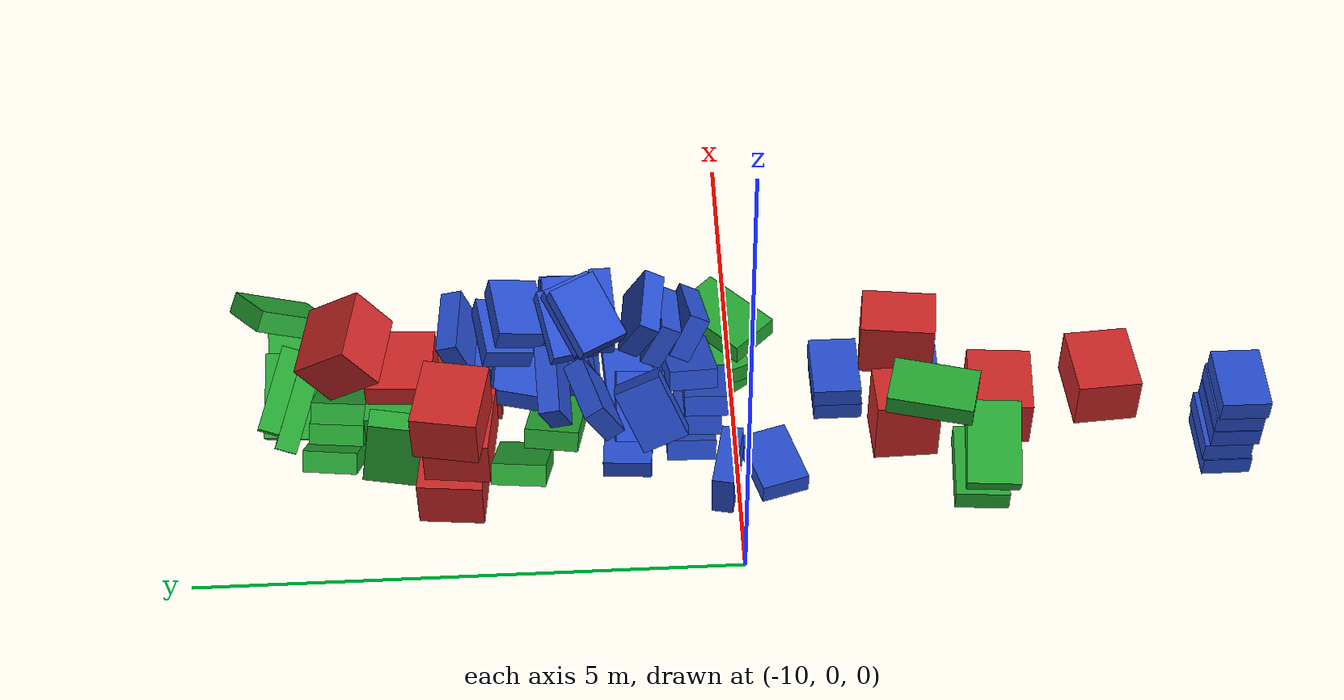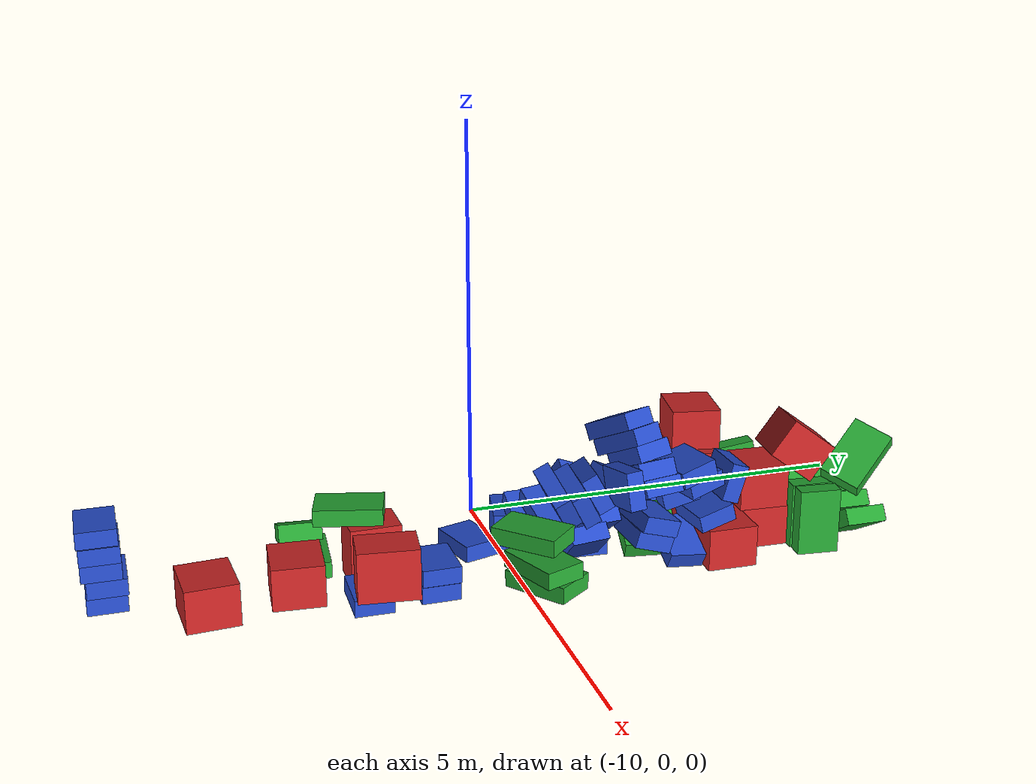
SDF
<sdf version="1.6">
 <world name="default">
  <model name="baggage_D">
   <static>0</static>
   <link name="link">
    <collision name="collision"><geometry><box><size>0.8 0.5 0.2</size></box></geometry></collision>
    <visual name="visual">
     <geometry><box><size>0.8 0.5 0.2</size></box></geometry>
     <material>
      <script><uri>file://media/materials/scripts/gazebo.material</uri><name>Gazebo/Green</name></script>
     </material>
    </visual>
    <inertial>
     <inertia><ixx>1</ixx><ixy>0</ixy><ixz>0</ixz><iyy>1</iyy><iyz>0</iyz><izz>1</izz></inertia>
     <mass>1</mass>
    </inertial>
   </link>
   <pose>-9.08099 -2.35326 0.443171 5.7e-05 -0.385028 -0.081844</pose>
  </model>
  <model name="baggage_B_clone_3">
   <static>0</static>
   <link name="link">
    <collision name="collision"><geometry><box><size>0.65 0.45 0.2</size></box></geometry></collision>
    <visual name="visual">
     <geometry><box><size>0.65 0.45 0.2</size></box></geometry>
     <material>
      <script><uri>file://media/materials/scripts/gazebo.material</uri><name>Gazebo/Blue</name></script>
     </material>
    </visual>
    <inertial>
     <inertia><ixx>1</ixx><ixy>0</ixy><ixz>0</ixz><iyy>1</iyy><iyz>0</iyz><izz>1</izz></inertia>
     <mass>1</mass>
    </inertial>
   </link>
   <pose>-8.83892 -4.5935 0.499508 1.9e-05 2e-05 -0.011908</pose>
  </model>
  <model name="baggage_B_clone_4">
   <static>0</static>
   <link name="link">
    <collision name="collision"><geometry><box><size>0.65 0.45 0.2</size></box></geometry></collision>
    <visual name="visual">
     <geometry><box><size>0.65 0.45 0.2</size></box></geometry>
     <material>
      <script><uri>file://media/materials/scripts/gazebo.material</uri><name>Gazebo/Blue</name></script>
     </material>
    </visual>
    <inertial>
     <inertia><ixx>1</ixx><ixy>0</ixy><ixz>0</ixz><iyy>1</iyy><iyz>0</iyz><izz>1</izz></inertia>
     <mass>1</mass>
    </inertial>
   </link>
   <pose>-8.84925 -4.56067 0.099617 1.8e-05 2.2e-05 0.000958</pose>
  </model>
  <model name="baggage_B_clone_5">
   <static>0</static>
   <link name="link">
    <collision name="collision"><geometry><box><size>0.65 0.45 0.2</size></box></geometry></collision>
    <visual name="visual">
     <geometry><box><size>0.65 0.45 0.2</size></box></geometry>
     <material>
      <script><uri>file://media/materials/scripts/gazebo.material</uri><name>Gazebo/Blue</name></script>
     </material>
    </visual>
    <inertial>
     <inertia><ixx>1</ixx><ixy>0</ixy><ixz>0</ixz><iyy>1</iyy><iyz>0</iyz><izz>1</izz></inertia>
     <mass>1</mass>
    </inertial>
   </link>
   <pose>-7.92374 -1.76438 0.1 0 0 -0.017897</pose>
  </model>
  <model name="baggage_B_clone_6">
   <static>0</static>
   <link name="link">
    <collision name="collision"><geometry><box><size>0.65 0.45 0.2</size></box></geometry></collision>
    <visual name="visual">
     <geometry><box><size>0.65 0.45 0.2</size></box></geometry>
     <material>
      <script><uri>file://media/materials/scripts/gazebo.material</uri><name>Gazebo/Blue</name></script>
     </material>
    </visual>
    <inertial>
     <inertia><ixx>1</ixx><ixy>0</ixy><ixz>0</ixz><iyy>1</iyy><iyz>0</iyz><izz>1</izz></inertia>
     <mass>1</mass>
    </inertial>
   </link>
   <pose>-8.00112 -0.995911 0.099982 2e-06 -3e-06 0.000404</pose>
  </model>
  <model name="baggage_B_clone_7">
   <static>0</static>
   <link name="link">
    <collision name="collision"><geometry><box><size>0.65 0.45 0.2</size></box></geometry></collision>
    <visual name="visual">
     <geometry><box><size>0.65 0.45 0.2</size></box></geometry>
     <material>
      <script><uri>file://media/materials/scripts/gazebo.material</uri><name>Gazebo/Blue</name></script>
     </material>
    </visual>
    <inertial>
     <inertia><ixx>1</ixx><ixy>0</ixy><ixz>0</ixz><iyy>1</iyy><iyz>0</iyz><izz>1</izz></inertia>
     <mass>1</mass>
    </inertial>
   </link>
   <pose>-8.00628 -0.980284 0.299987 1.8e-05 -6e-06 0.000107</pose>
  </model>
  <model name="baggage_B_clone_8">
   <static>0</static>
   <link name="link">
    <collision name="collision"><geometry><box><size>0.65 0.45 0.2</size></box></geometry></collision>
    <visual name="visual">
     <geometry><box><size>0.65 0.45 0.2</size></box></geometry>
     <material>
      <script><uri>file://media/materials/scripts/gazebo.material</uri><name>Gazebo/Blue</name></script>
     </material>
    </visual>
    <inertial>
     <inertia><ixx>1</ixx><ixy>0</ixy><ixz>0</ixz><iyy>1</iyy><iyz>0</iyz><izz>1</izz></inertia>
     <mass>1</mass>
    </inertial>
   </link>
   <pose>-8.85185 -4.61375 0.899508 1.6e-05 3.1e-05 -0.006663</pose>
  </model>
  <model name="baggage_B_clone_10">
   <static>0</static>
   <link name="link">
    <collision name="collision"><geometry><box><size>0.65 0.45 0.2</size></box></geometry></collision>
    <visual name="visual">
     <geometry><box><size>0.65 0.45 0.2</size></box></geometry>
     <material>
      <script><uri>file://media/materials/scripts/gazebo.material</uri><name>Gazebo/Blue</name></script>
     </material>
    </visual>
    <inertial>
     <inertia><ixx>1</ixx><ixy>0</ixy><ixz>0</ixz><iyy>1</iyy><iyz>0</iyz><izz>1</izz></inertia>
     <mass>1</mass>
    </inertial>
   </link>
   <pose>-8.83854 -4.54571 0.299526 2.1e-05 1.8e-05 -0.004779</pose>
  </model>
  <model name="baggage_B_clone_11">
   <static>0</static>
   <link name="link">
    <collision name="collision"><geometry><box><size>0.65 0.45 0.2</size></box></geometry></collision>
    <visual name="visual">
     <geometry><box><size>0.65 0.45 0.2</size></box></geometry>
     <material>
      <script><uri>file://media/materials/scripts/gazebo.material</uri><name>Gazebo/Blue</name></script>
     </material>
    </visual>
    <inertial>
     <inertia><ixx>1</ixx><ixy>0</ixy><ixz>0</ixz><iyy>1</iyy><iyz>0</iyz><izz>1</izz></inertia>
     <mass>1</mass>
    </inertial>
   </link>
   <pose>-8.83119 -4.59747 0.69951 1.5e-05 2.4e-05 -0.008866</pose>
  </model>
  <model name="baggage_A_clone_5">
   <static>0</static>
   <link name="link">
    <collision name="collision"><geometry><box><size>0.7 0.6 0.5</size></box></geometry></collision>
    <visual name="visual">
     <geometry><box><size>0.7 0.6 0.5</size></box></geometry>
     <material>
      <script><uri>file://media/materials/scripts/gazebo.material</uri><name>Gazebo/Red</name></script>
     </material>
    </visual>
    <inertial>
     <inertia><ixx>1</ixx><ixy>0</ixy><ixz>0</ixz><iyy>1</iyy><iyz>0</iyz><izz>1</izz></inertia>
     <mass>1</mass>
    </inertial>
   </link>
   <pose>-8.56744 -1.58966 0.349968 0.885161 1.57079 0.910334</pose>
  </model>
  <model name="baggage_A_clone_6">
   <static>0</static>
   <link name="link">
    <collision name="collision"><geometry><box><size>0.7 0.6 0.5</size></box></geometry></collision>
    <visual name="visual">
     <geometry><box><size>0.7 0.6 0.5</size></box></geometry>
     <material>
      <script><uri>file://media/materials/scripts/gazebo.material</uri><name>Gazebo/Red</name></script>
     </material>
    </visual>
    <inertial>
     <inertia><ixx>1</ixx><ixy>0</ixy><ixz>0</ixz><iyy>1</iyy><iyz>0</iyz><izz>1</izz></inertia>
     <mass>1</mass>
    </inertial>
   </link>
   <pose>-8.13946 -3.5127 0.25 -3.14159 -0 0.065318</pose>
  </model>
  <model name="baggage_A_clone_10">
   <static>0</static>
   <link name="link">
    <collision name="collision"><geometry><box><size>0.7 0.6 0.5</size></box></geometry></collision>
    <visual name="visual">
     <geometry><box><size>0.7 0.6 0.5</size></box></geometry>
     <material>
      <script><uri>file://media/materials/scripts/gazebo.material</uri><name>Gazebo/Red</name></script>
     </material>
    </visual>
    <inertial>
     <inertia><ixx>1</ixx><ixy>0</ixy><ixz>0</ixz><iyy>1</iyy><iyz>0</iyz><izz>1</izz></inertia>
     <mass>1</mass>
    </inertial>
   </link>
   <pose>-7.71357 -1.59823 0.500016 -1.57066 1.7e-05 1.44447</pose>
  </model>
  <model name="baggage_A_clone_15">
   <static>0</static>
   <link name="link">
    <collision name="collision"><geometry><box><size>0.7 0.6 0.5</size></box></geometry></collision>
    <visual name="visual">
     <geometry><box><size>0.7 0.6 0.5</size></box></geometry>
     <material>
      <script><uri>file://media/materials/scripts/gazebo.material</uri><name>Gazebo/Red</name></script>
     </material>
    </visual>
    <inertial>
     <inertia><ixx>1</ixx><ixy>0</ixy><ixz>0</ixz><iyy>1</iyy><iyz>0</iyz><izz>1</izz></inertia>
     <mass>1</mass>
    </inertial>
   </link>
   <pose>-8.33411 -2.50749 0.250203 3.9e-05 -4e-06 -0.081785</pose>
  </model>
  <model name="baggage_D_clone">
   <static>0</static>
   <link name="link">
    <collision name="collision"><geometry><box><size>0.8 0.5 0.2</size></box></geometry></collision>
    <visual name="visual">
     <geometry><box><size>0.8 0.5 0.2</size></box></geometry>
     <material>
      <script><uri>file://media/materials/scripts/gazebo.material</uri><name>Gazebo/Green</name></script>
     </material>
    </visual>
    <inertial>
     <inertia><ixx>1</ixx><ixy>0</ixy><ixz>0</ixz><iyy>1</iyy><iyz>0</iyz><izz>1</izz></inertia>
     <mass>1</mass>
    </inertial>
   </link>
   <pose>-8.70727 -1.81308 0.799972 3.14159 5.3e-05 -1.82996</pose>
  </model>
  <model name="baggage_D_clone_1">
   <static>0</static>
   <link name="link">
    <collision name="collision"><geometry><box><size>0.8 0.5 0.2</size></box></geometry></collision>
    <visual name="visual">
     <geometry><box><size>0.8 0.5 0.2</size></box></geometry>
     <material>
      <script><uri>file://media/materials/scripts/gazebo.material</uri><name>Gazebo/Green</name></script>
     </material>
    </visual>
    <inertial>
     <inertia><ixx>1</ixx><ixy>0</ixy><ixz>0</ixz><iyy>1</iyy><iyz>0</iyz><izz>1</izz></inertia>
     <mass>1</mass>
    </inertial>
   </link>
   <pose>-7.66123 0.190995 0.299873 3.14156 -3.2e-05 -2.77024</pose>
  </model>
  <model name="baggage_D_clone_2">
   <static>0</static>
   <link name="link">
    <collision name="collision"><geometry><box><size>0.8 0.5 0.2</size></box></geometry></collision>
    <visual name="visual">
     <geometry><box><size>0.8 0.5 0.2</size></box></geometry>
     <material>
      <script><uri>file://media/materials/scripts/gazebo.material</uri><name>Gazebo/Green</name></script>
     </material>
    </visual>
    <inertial>
     <inertia><ixx>1</ixx><ixy>0</ixy><ixz>0</ixz><iyy>1</iyy><iyz>0</iyz><izz>1</izz></inertia>
     <mass>1</mass>
    </inertial>
   </link>
   <pose>-7.63386 0.055749 0.699793 4.2e-05 2.1e-05 -2.37756</pose>
  </model>
  <model name="baggage_D_clone_3">
   <static>0</static>
   <link name="link">
    <collision name="collision"><geometry><box><size>0.8 0.5 0.2</size></box></geometry></collision>
    <visual name="visual">
     <geometry><box><size>0.8 0.5 0.2</size></box></geometry>
     <material>
      <script><uri>file://media/materials/scripts/gazebo.material</uri><name>Gazebo/Green</name></script>
     </material>
    </visual>
    <inertial>
     <inertia><ixx>1</ixx><ixy>0</ixy><ixz>0</ixz><iyy>1</iyy><iyz>0</iyz><izz>1</izz></inertia>
     <mass>1</mass>
    </inertial>
   </link>
   <pose>-9.06676 -2.26528 0.1 0 0 -0.081788</pose>
  </model>
  <model name="baggage_D_clone_5">
   <static>0</static>
   <link name="link">
    <collision name="collision"><geometry><box><size>0.8 0.5 0.2</size></box></geometry></collision>
    <visual name="visual">
     <geometry><box><size>0.8 0.5 0.2</size></box></geometry>
     <material>
      <script><uri>file://media/materials/scripts/gazebo.material</uri><name>Gazebo/Green</name></script>
     </material>
    </visual>
    <inertial>
     <inertia><ixx>1</ixx><ixy>0</ixy><ixz>0</ixz><iyy>1</iyy><iyz>0</iyz><izz>1</izz></inertia>
     <mass>1</mass>
    </inertial>
   </link>
   <pose>-7.66569 0.236285 0.09983 1e-05 2.5e-05 -2.50216</pose>
  </model>
  <model name="baggage_D_clone_51">
   <static>0</static>
   <link name="link">
    <collision name="collision"><geometry><box><size>0.8 0.5 0.2</size></box></geometry></collision>
    <visual name="visual">
     <geometry><box><size>0.8 0.5 0.2</size></box></geometry>
     <material>
      <script><uri>file://media/materials/scripts/gazebo.material</uri><name>Gazebo/Green</name></script>
     </material>
    </visual>
    <inertial>
     <inertia><ixx>1</ixx><ixy>0</ixy><ixz>0</ixz><iyy>1</iyy><iyz>0</iyz><izz>1</izz></inertia>
     <mass>1</mass>
    </inertial>
   </link>
   <pose>-8.92369 3.16437 0.56258 1.5705 -1.42594 -1.6536</pose>
  </model>
  <model name="baggage_D_clone_52">
   <static>0</static>
   <link name="link">
    <collision name="collision"><geometry><box><size>0.8 0.5 0.2</size></box></geometry></collision>
    <visual name="visual">
     <geometry><box><size>0.8 0.5 0.2</size></box></geometry>
     <material>
      <script><uri>file://media/materials/scripts/gazebo.material</uri><name>Gazebo/Green</name></script>
     </material>
    </visual>
    <inertial>
     <inertia><ixx>1</ixx><ixy>0</ixy><ixz>0</ixz><iyy>1</iyy><iyz>0</iyz><izz>1</izz></inertia>
     <mass>1</mass>
    </inertial>
   </link>
   <pose>-8.70442 3.16653 0.400003 1.6666 -1.57072 -1.73731</pose>
  </model>
  <model name="baggage_D_clone_53">
   <static>0</static>
   <link name="link">
    <collision name="collision"><geometry><box><size>0.8 0.5 0.2</size></box></geometry></collision>
    <visual name="visual">
     <geometry><box><size>0.8 0.5 0.2</size></box></geometry>
     <material>
      <script><uri>file://media/materials/scripts/gazebo.material</uri><name>Gazebo/Green</name></script>
     </material>
    </visual>
    <inertial>
     <inertia><ixx>1</ixx><ixy>0</ixy><ixz>0</ixz><iyy>1</iyy><iyz>0</iyz><izz>1</izz></inertia>
     <mass>1</mass>
    </inertial>
   </link>
   <pose>-8.97852 1.99282 0.319428 -3.14156 -0.641454 3.0429</pose>
  </model>
  <model name="baggage_D_clone_57">
   <static>0</static>
   <link name="link">
    <collision name="collision"><geometry><box><size>0.8 0.5 0.2</size></box></geometry></collision>
    <visual name="visual">
     <geometry><box><size>0.8 0.5 0.2</size></box></geometry>
     <material>
      <script><uri>file://media/materials/scripts/gazebo.material</uri><name>Gazebo/Green</name></script>
     </material>
    </visual>
    <inertial>
     <inertia><ixx>1</ixx><ixy>0</ixy><ixz>0</ixz><iyy>1</iyy><iyz>0</iyz><izz>1</izz></inertia>
     <mass>1</mass>
    </inertial>
   </link>
   <pose>-8.75103 3.70369 0.320784 -3.14131 -0.647489 3.02502</pose>
  </model>
  <model name="baggage_D_clone_58">
   <static>0</static>
   <link name="link">
    <collision name="collision"><geometry><box><size>0.8 0.5 0.2</size></box></geometry></collision>
    <visual name="visual">
     <geometry><box><size>0.8 0.5 0.2</size></box></geometry>
     <material>
      <script><uri>file://media/materials/scripts/gazebo.material</uri><name>Gazebo/Green</name></script>
     </material>
    </visual>
    <inertial>
     <inertia><ixx>1</ixx><ixy>0</ixy><ixz>0</ixz><iyy>1</iyy><iyz>0</iyz><izz>1</izz></inertia>
     <mass>1</mass>
    </inertial>
   </link>
   <pose>-8.40837 2.54209 0.399991 1.84554 -1.57079 -1.91352</pose>
  </model>
  <model name="baggage_D_clone_60">
   <static>0</static>
   <link name="link">
    <collision name="collision"><geometry><box><size>0.8 0.5 0.2</size></box></geometry></collision>
    <visual name="visual">
     <geometry><box><size>0.8 0.5 0.2</size></box></geometry>
     <material>
      <script><uri>file://media/materials/scripts/gazebo.material</uri><name>Gazebo/Green</name></script>
     </material>
    </visual>
    <inertial>
     <inertia><ixx>1</ixx><ixy>0</ixy><ixz>0</ixz><iyy>1</iyy><iyz>0</iyz><izz>1</izz></inertia>
     <mass>1</mass>
    </inertial>
   </link>
   <pose>-8.43063 3.66696 0.327839 3.11836 -0.647087 3.0645</pose>
  </model>
  <model name="baggage_D_clone_61">
   <static>0</static>
   <link name="link">
    <collision name="collision"><geometry><box><size>0.8 0.5 0.2</size></box></geometry></collision>
    <visual name="visual">
     <geometry><box><size>0.8 0.5 0.2</size></box></geometry>
     <material>
      <script><uri>file://media/materials/scripts/gazebo.material</uri><name>Gazebo/Green</name></script>
     </material>
    </visual>
    <inertial>
     <inertia><ixx>1</ixx><ixy>0</ixy><ixz>0</ixz><iyy>1</iyy><iyz>0</iyz><izz>1</izz></inertia>
     <mass>1</mass>
    </inertial>
   </link>
   <pose>-8.41577 1.66622 0.245281 3.14159 0.392732 -0.154964</pose>
  </model>
  <model name="baggage_D_clone_65">
   <static>0</static>
   <link name="link">
    <collision name="collision"><geometry><box><size>0.8 0.5 0.2</size></box></geometry></collision>
    <visual name="visual">
     <geometry><box><size>0.8 0.5 0.2</size></box></geometry>
     <material>
      <script><uri>file://media/materials/scripts/gazebo.material</uri><name>Gazebo/Green</name></script>
     </material>
    </visual>
    <inertial>
     <inertia><ixx>1</ixx><ixy>0</ixy><ixz>0</ixz><iyy>1</iyy><iyz>0</iyz><izz>1</izz></inertia>
     <mass>1</mass>
    </inertial>
   </link>
   <pose>-8.33006 3.65299 0.501863 3.09614 -0.646003 3.10098</pose>
  </model>
  <model name="baggage_D_clone_66">
   <static>0</static>
   <link name="link">
    <collision name="collision"><geometry><box><size>0.8 0.5 0.2</size></box></geometry></collision>
    <visual name="visual">
     <geometry><box><size>0.8 0.5 0.2</size></box></geometry>
     <material>
      <script><uri>file://media/materials/scripts/gazebo.material</uri><name>Gazebo/Green</name></script>
     </material>
    </visual>
    <inertial>
     <inertia><ixx>1</ixx><ixy>0</ixy><ixz>0</ixz><iyy>1</iyy><iyz>0</iyz><izz>1</izz></inertia>
     <mass>1</mass>
    </inertial>
   </link>
   <pose>-7.85089 3.6303 0.4 -2.3788 -1.57079 2.31078</pose>
  </model>
  <model name="baggage_D_clone_67">
   <static>0</static>
   <link name="link">
    <collision name="collision"><geometry><box><size>0.8 0.5 0.2</size></box></geometry></collision>
    <visual name="visual">
     <geometry><box><size>0.8 0.5 0.2</size></box></geometry>
     <material>
      <script><uri>file://media/materials/scripts/gazebo.material</uri><name>Gazebo/Green</name></script>
     </material>
    </visual>
    <inertial>
     <inertia><ixx>1</ixx><ixy>0</ixy><ixz>0</ixz><iyy>1</iyy><iyz>0</iyz><izz>1</izz></inertia>
     <mass>1</mass>
    </inertial>
   </link>
   <pose>-7.62329 3.6268 0.399849 -2.60646 -1.57077 2.49076</pose>
  </model>
  <model name="baggage_D_clone_82">
   <static>0</static>
   <link name="link">
    <collision name="collision"><geometry><box><size>0.8 0.5 0.2</size></box></geometry></collision>
    <visual name="visual">
     <geometry><box><size>0.8 0.5 0.2</size></box></geometry>
     <material>
      <script><uri>file://media/materials/scripts/gazebo.material</uri><name>Gazebo/Green</name></script>
     </material>
    </visual>
    <inertial>
     <inertia><ixx>1</ixx><ixy>0</ixy><ixz>0</ixz><iyy>1</iyy><iyz>0</iyz><izz>1</izz></inertia>
     <mass>1</mass>
    </inertial>
   </link>
   <pose>-8.25535 4.22263 0.632813 1.92452 -0.575417 -0.372894</pose>
  </model>
  <model name="baggage_D_clone_85">
   <static>0</static>
   <link name="link">
    <collision name="collision"><geometry><box><size>0.8 0.5 0.2</size></box></geometry></collision>
    <visual name="visual">
     <geometry><box><size>0.8 0.5 0.2</size></box></geometry>
     <material>
      <script><uri>file://media/materials/scripts/gazebo.material</uri><name>Gazebo/Green</name></script>
     </material>
    </visual>
    <inertial>
     <inertia><ixx>1</ixx><ixy>0</ixy><ixz>0</ixz><iyy>1</iyy><iyz>0</iyz><izz>1</izz></inertia>
     <mass>1</mass>
    </inertial>
   </link>
   <pose>-8.39862 4.06883 0.525246 1.9298 -0.59676 -0.382446</pose>
  </model>
  <model name="baggage_D_clone_87">
   <static>0</static>
   <link name="link">
    <collision name="collision"><geometry><box><size>0.8 0.5 0.2</size></box></geometry></collision>
    <visual name="visual">
     <geometry><box><size>0.8 0.5 0.2</size></box></geometry>
     <material>
      <script><uri>file://media/materials/scripts/gazebo.material</uri><name>Gazebo/Green</name></script>
     </material>
    </visual>
    <inertial>
     <inertia><ixx>1</ixx><ixy>0</ixy><ixz>0</ixz><iyy>1</iyy><iyz>0</iyz><izz>1</izz></inertia>
     <mass>1</mass>
    </inertial>
   </link>
   <pose>-7.73646 4.17895 1.08743 2.77049 0.637832 -1.15495</pose>
  </model>
  <model name="baggage_D_clone_88">
   <static>0</static>
   <link name="link">
    <collision name="collision"><geometry><box><size>0.8 0.5 0.2</size></box></geometry></collision>
    <visual name="visual">
     <geometry><box><size>0.8 0.5 0.2</size></box></geometry>
     <material>
      <script><uri>file://media/materials/scripts/gazebo.material</uri><name>Gazebo/Green</name></script>
     </material>
    </visual>
    <inertial>
     <inertia><ixx>1</ixx><ixy>0</ixy><ixz>0</ixz><iyy>1</iyy><iyz>0</iyz><izz>1</izz></inertia>
     <mass>1</mass>
    </inertial>
   </link>
   <pose>-7.68942 4.13706 0.29387 -0 -0.548468 -0.013199</pose>
  </model>
  <model name="baggage_D_clone_95">
   <static>0</static>
   <link name="link">
    <collision name="collision"><geometry><box><size>0.8 0.5 0.2</size></box></geometry></collision>
    <visual name="visual">
     <geometry><box><size>0.8 0.5 0.2</size></box></geometry>
     <material>
      <script><uri>file://media/materials/scripts/gazebo.material</uri><name>Gazebo/Green</name></script>
     </material>
    </visual>
    <inertial>
     <inertia><ixx>1</ixx><ixy>0</ixy><ixz>0</ixz><iyy>1</iyy><iyz>0</iyz><izz>1</izz></inertia>
     <mass>1</mass>
    </inertial>
   </link>
   <pose>-8.0632 4.14767 0.315143 0.00351 -0.622268 -0.061698</pose>
  </model>
  <model name="baggage_A_clone_79">
   <static>0</static>
   <link name="link">
    <collision name="collision"><geometry><box><size>0.7 0.6 0.5</size></box></geometry></collision>
    <visual name="visual">
     <geometry><box><size>0.7 0.6 0.5</size></box></geometry>
     <material>
      <script><uri>file://media/materials/scripts/gazebo.material</uri><name>Gazebo/Red</name></script>
     </material>
    </visual>
    <inertial>
     <inertia><ixx>1</ixx><ixy>0</ixy><ixz>0</ixz><iyy>1</iyy><iyz>0</iyz><izz>1</izz></inertia>
     <mass>1</mass>
    </inertial>
   </link>
   <pose>-8.19365 3.58694 1.16089 -0.631808 -0.086196 -0.174095</pose>
  </model>
  <model name="baggage_A_clone_80">
   <static>0</static>
   <link name="link">
    <collision name="collision"><geometry><box><size>0.7 0.6 0.5</size></box></geometry></collision>
    <visual name="visual">
     <geometry><box><size>0.7 0.6 0.5</size></box></geometry>
     <material>
      <script><uri>file://media/materials/scripts/gazebo.material</uri><name>Gazebo/Red</name></script>
     </material>
    </visual>
    <inertial>
     <inertia><ixx>1</ixx><ixy>0</ixy><ixz>0</ixz><iyy>1</iyy><iyz>0</iyz><izz>1</izz></inertia>
     <mass>1</mass>
    </inertial>
   </link>
   <pose>-8.2435 3.08424 0.749993 -2.5e-05 -4.6e-05 -0.063532</pose>
  </model>
  <model name="baggage_A_clone_81">
   <static>0</static>
   <link name="link">
    <collision name="collision"><geometry><box><size>0.7 0.6 0.5</size></box></geometry></collision>
    <visual name="visual">
     <geometry><box><size>0.7 0.6 0.5</size></box></geometry>
     <material>
      <script><uri>file://media/materials/scripts/gazebo.material</uri><name>Gazebo/Red</name></script>
     </material>
    </visual>
    <inertial>
     <inertia><ixx>1</ixx><ixy>0</ixy><ixz>0</ixz><iyy>1</iyy><iyz>0</iyz><izz>1</izz></inertia>
     <mass>1</mass>
    </inertial>
   </link>
   <pose>-8.24678 3.0945 0.250034 -1.4e-05 -4.3e-05 -0.039298</pose>
  </model>
  <model name="baggage_A_clone_82">
   <static>0</static>
   <link name="link">
    <collision name="collision"><geometry><box><size>0.7 0.6 0.5</size></box></geometry></collision>
    <visual name="visual">
     <geometry><box><size>0.7 0.6 0.5</size></box></geometry>
     <material>
      <script><uri>file://media/materials/scripts/gazebo.material</uri><name>Gazebo/Red</name></script>
     </material>
    </visual>
    <inertial>
     <inertia><ixx>1</ixx><ixy>0</ixy><ixz>0</ixz><iyy>1</iyy><iyz>0</iyz><izz>1</izz></inertia>
     <mass>1</mass>
    </inertial>
   </link>
   <pose>-9.09071 2.59428 1.25001 -2.3e-05 -1e-05 -0.17626</pose>
  </model>
  <model name="baggage_A_clone_83">
   <static>0</static>
   <link name="link">
    <collision name="collision"><geometry><box><size>0.7 0.6 0.5</size></box></geometry></collision>
    <visual name="visual">
     <geometry><box><size>0.7 0.6 0.5</size></box></geometry>
     <material>
      <script><uri>file://media/materials/scripts/gazebo.material</uri><name>Gazebo/Red</name></script>
     </material>
    </visual>
    <inertial>
     <inertia><ixx>1</ixx><ixy>0</ixy><ixz>0</ixz><iyy>1</iyy><iyz>0</iyz><izz>1</izz></inertia>
     <mass>1</mass>
    </inertial>
   </link>
   <pose>-8.94156 2.54128 0.749946 6e-06 -4e-06 -0.108762</pose>
  </model>
  <model name="baggage_A_clone_84">
   <static>0</static>
   <link name="link">
    <collision name="collision"><geometry><box><size>0.7 0.6 0.5</size></box></geometry></collision>
    <visual name="visual">
     <geometry><box><size>0.7 0.6 0.5</size></box></geometry>
     <material>
      <script><uri>file://media/materials/scripts/gazebo.material</uri><name>Gazebo/Red</name></script>
     </material>
    </visual>
    <inertial>
     <inertia><ixx>1</ixx><ixy>0</ixy><ixz>0</ixz><iyy>1</iyy><iyz>0</iyz><izz>1</izz></inertia>
     <mass>1</mass>
    </inertial>
   </link>
   <pose>-9.02977 2.62735 0.249956 6e-06 -4e-06 -0.094803</pose>
  </model>
  <model name="baggage_A_clone_88">
   <static>0</static>
   <link name="link">
    <collision name="collision"><geometry><box><size>0.7 0.6 0.5</size></box></geometry></collision>
    <visual name="visual">
     <geometry><box><size>0.7 0.6 0.5</size></box></geometry>
     <material>
      <script><uri>file://media/materials/scripts/gazebo.material</uri><name>Gazebo/Red</name></script>
     </material>
    </visual>
    <inertial>
     <inertia><ixx>1</ixx><ixy>0</ixy><ixz>0</ixz><iyy>1</iyy><iyz>0</iyz><izz>1</izz></inertia>
     <mass>1</mass>
    </inertial>
   </link>
   <pose>-7.81331 2.47832 0.249986 -4e-06 -0 -0.026713</pose>
  </model>
  <model name="baggage_B_clone_48">
   <static>0</static>
   <link name="link">
    <collision name="collision"><geometry><box><size>0.65 0.45 0.2</size></box></geometry></collision>
    <visual name="visual">
     <geometry><box><size>0.65 0.45 0.2</size></box></geometry>
     <material>
      <script><uri>file://media/materials/scripts/gazebo.material</uri><name>Gazebo/Blue</name></script>
     </material>
    </visual>
    <inertial>
     <inertia><ixx>1</ixx><ixy>0</ixy><ixz>0</ixz><iyy>1</iyy><iyz>0</iyz><izz>1</izz></inertia>
     <mass>1</mass>
    </inertial>
   </link>
   <pose>-7.88654 1.94399 0.245161 -0.118217 0.41082 -0.024263</pose>
  </model>
  <model name="baggage_B_clone_49">
   <static>0</static>
   <link name="link">
    <collision name="collision"><geometry><box><size>0.65 0.45 0.2</size></box></geometry></collision>
    <visual name="visual">
     <geometry><box><size>0.65 0.45 0.2</size></box></geometry>
     <material>
      <script><uri>file://media/materials/scripts/gazebo.material</uri><name>Gazebo/Blue</name></script>
     </material>
    </visual>
    <inertial>
     <inertia><ixx>1</ixx><ixy>0</ixy><ixz>0</ixz><iyy>1</iyy><iyz>0</iyz><izz>1</izz></inertia>
     <mass>1</mass>
    </inertial>
   </link>
   <pose>-7.93557 2.55917 0.973947 -1.8803 -0.074228 -0.076191</pose>
  </model>
  <model name="baggage_B_clone_50">
   <static>0</static>
   <link name="link">
    <collision name="collision"><geometry><box><size>0.65 0.45 0.2</size></box></geometry></collision>
    <visual name="visual">
     <geometry><box><size>0.65 0.45 0.2</size></box></geometry>
     <material>
      <script><uri>file://media/materials/scripts/gazebo.material</uri><name>Gazebo/Blue</name></script>
     </material>
    </visual>
    <inertial>
     <inertia><ixx>1</ixx><ixy>0</ixy><ixz>0</ixz><iyy>1</iyy><iyz>0</iyz><izz>1</izz></inertia>
     <mass>1</mass>
    </inertial>
   </link>
   <pose>-7.84452 2.25872 0.623531 0.248618 -0.025604 0.073783</pose>
  </model>
  <model name="baggage_B_clone_51">
   <static>0</static>
   <link name="link">
    <collision name="collision"><geometry><box><size>0.65 0.45 0.2</size></box></geometry></collision>
    <visual name="visual">
     <geometry><box><size>0.65 0.45 0.2</size></box></geometry>
     <material>
      <script><uri>file://media/materials/scripts/gazebo.material</uri><name>Gazebo/Blue</name></script>
     </material>
    </visual>
    <inertial>
     <inertia><ixx>1</ixx><ixy>0</ixy><ixz>0</ixz><iyy>1</iyy><iyz>0</iyz><izz>1</izz></inertia>
     <mass>1</mass>
    </inertial>
   </link>
   <pose>-8.60624 1.0039 0.099908 1e-06 3e-06 -0.072633</pose>
  </model>
  <model name="baggage_B_clone_53">
   <static>0</static>
   <link name="link">
    <collision name="collision"><geometry><box><size>0.65 0.45 0.2</size></box></geometry></collision>
    <visual name="visual">
     <geometry><box><size>0.65 0.45 0.2</size></box></geometry>
     <material>
      <script><uri>file://media/materials/scripts/gazebo.material</uri><name>Gazebo/Blue</name></script>
     </material>
    </visual>
    <inertial>
     <inertia><ixx>1</ixx><ixy>0</ixy><ixz>0</ixz><iyy>1</iyy><iyz>0</iyz><izz>1</izz></inertia>
     <mass>1</mass>
    </inertial>
   </link>
   <pose>-7.99788 0.801374 0.350588 0.102932 -0.682923 -0.072729</pose>
  </model>
  <model name="baggage_B_clone_55">
   <static>0</static>
   <link name="link">
    <collision name="collision"><geometry><box><size>0.65 0.45 0.2</size></box></geometry></collision>
    <visual name="visual">
     <geometry><box><size>0.65 0.45 0.2</size></box></geometry>
     <material>
      <script><uri>file://media/materials/scripts/gazebo.material</uri><name>Gazebo/Blue</name></script>
     </material>
    </visual>
    <inertial>
     <inertia><ixx>1</ixx><ixy>0</ixy><ixz>0</ixz><iyy>1</iyy><iyz>0</iyz><izz>1</izz></inertia>
     <mass>1</mass>
    </inertial>
   </link>
   <pose>-8.49027 0.890093 0.493799 0.090364 -0.698025 -0.041807</pose>
  </model>
  <model name="baggage_B_clone_58">
   <static>0</static>
   <link name="link">
    <collision name="collision"><geometry><box><size>0.65 0.45 0.2</size></box></geometry></collision>
    <visual name="visual">
     <geometry><box><size>0.65 0.45 0.2</size></box></geometry>
     <material>
      <script><uri>file://media/materials/scripts/gazebo.material</uri><name>Gazebo/Blue</name></script>
     </material>
    </visual>
    <inertial>
     <inertia><ixx>1</ixx><ixy>0</ixy><ixz>0</ixz><iyy>1</iyy><iyz>0</iyz><izz>1</izz></inertia>
     <mass>1</mass>
    </inertial>
   </link>
   <pose>-7.85193 1.49539 0.427016 -0.309857 -0.021029 0.023004</pose>
  </model>
  <model name="baggage_B_clone_59">
   <static>0</static>
   <link name="link">
    <collision name="collision"><geometry><box><size>0.65 0.45 0.2</size></box></geometry></collision>
    <visual name="visual">
     <geometry><box><size>0.65 0.45 0.2</size></box></geometry>
     <material>
      <script><uri>file://media/materials/scripts/gazebo.material</uri><name>Gazebo/Blue</name></script>
     </material>
    </visual>
    <inertial>
     <inertia><ixx>1</ixx><ixy>0</ixy><ixz>0</ixz><iyy>1</iyy><iyz>0</iyz><izz>1</izz></inertia>
     <mass>1</mass>
    </inertial>
   </link>
   <pose>-8.34221 1.35167 1.62484 -0.046803 -0.441433 0.509184</pose>
  </model>
  <model name="baggage_B_clone_60">
   <static>0</static>
   <link name="link">
    <collision name="collision"><geometry><box><size>0.65 0.45 0.2</size></box></geometry></collision>
    <visual name="visual">
     <geometry><box><size>0.65 0.45 0.2</size></box></geometry>
     <material>
      <script><uri>file://media/materials/scripts/gazebo.material</uri><name>Gazebo/Blue</name></script>
     </material>
    </visual>
    <inertial>
     <inertia><ixx>1</ixx><ixy>0</ixy><ixz>0</ixz><iyy>1</iyy><iyz>0</iyz><izz>1</izz></inertia>
     <mass>1</mass>
    </inertial>
   </link>
   <pose>-8.19583 1.40586 1.47752 -0.047818 -0.441327 0.511565</pose>
  </model>
  <model name="baggage_B_clone_61">
   <static>0</static>
   <link name="link">
    <collision name="collision"><geometry><box><size>0.65 0.45 0.2</size></box></geometry></collision>
    <visual name="visual">
     <geometry><box><size>0.65 0.45 0.2</size></box></geometry>
     <material>
      <script><uri>file://media/materials/scripts/gazebo.material</uri><name>Gazebo/Blue</name></script>
     </material>
    </visual>
    <inertial>
     <inertia><ixx>1</ixx><ixy>0</ixy><ixz>0</ixz><iyy>1</iyy><iyz>0</iyz><izz>1</izz></inertia>
     <mass>1</mass>
    </inertial>
   </link>
   <pose>-7.84654 1.56046 0.616073 -0.310519 -0.000769 0.085936</pose>
  </model>
  <model name="baggage_B_clone_62">
   <static>0</static>
   <link name="link">
    <collision name="collision"><geometry><box><size>0.65 0.45 0.2</size></box></geometry></collision>
    <visual name="visual">
     <geometry><box><size>0.65 0.45 0.2</size></box></geometry>
     <material>
      <script><uri>file://media/materials/scripts/gazebo.material</uri><name>Gazebo/Blue</name></script>
     </material>
    </visual>
    <inertial>
     <inertia><ixx>1</ixx><ixy>0</ixy><ixz>0</ixz><iyy>1</iyy><iyz>0</iyz><izz>1</izz></inertia>
     <mass>1</mass>
    </inertial>
   </link>
   <pose>-8.1451 1.53245 1.30171 0.068967 -0.438701 0.238785</pose>
  </model>
  <model name="baggage_B_clone_63">
   <static>0</static>
   <link name="link">
    <collision name="collision"><geometry><box><size>0.65 0.45 0.2</size></box></geometry></collision>
    <visual name="visual">
     <geometry><box><size>0.65 0.45 0.2</size></box></geometry>
     <material>
      <script><uri>file://media/materials/scripts/gazebo.material</uri><name>Gazebo/Blue</name></script>
     </material>
    </visual>
    <inertial>
     <inertia><ixx>1</ixx><ixy>0</ixy><ixz>0</ixz><iyy>1</iyy><iyz>0</iyz><izz>1</izz></inertia>
     <mass>1</mass>
    </inertial>
   </link>
   <pose>-7.89583 1.52537 1.1745 0.064437 -0.434445 0.054244</pose>
  </model>
  <model name="baggage_B_clone_64">
   <static>0</static>
   <link name="link">
    <collision name="collision"><geometry><box><size>0.65 0.45 0.2</size></box></geometry></collision>
    <visual name="visual">
     <geometry><box><size>0.65 0.45 0.2</size></box></geometry>
     <material>
      <script><uri>file://media/materials/scripts/gazebo.material</uri><name>Gazebo/Blue</name></script>
     </material>
    </visual>
    <inertial>
     <inertia><ixx>1</ixx><ixy>0</ixy><ixz>0</ixz><iyy>1</iyy><iyz>0</iyz><izz>1</izz></inertia>
     <mass>1</mass>
    </inertial>
   </link>
   <pose>-7.7541 1.56036 1.02202 0.081253 -0.431722 0.014176</pose>
  </model>
  <model name="baggage_B_clone_66">
   <static>0</static>
   <link name="link">
    <collision name="collision"><geometry><box><size>0.65 0.45 0.2</size></box></geometry></collision>
    <visual name="visual">
     <geometry><box><size>0.65 0.45 0.2</size></box></geometry>
     <material>
      <script><uri>file://media/materials/scripts/gazebo.material</uri><name>Gazebo/Blue</name></script>
     </material>
    </visual>
    <inertial>
     <inertia><ixx>1</ixx><ixy>0</ixy><ixz>0</ixz><iyy>1</iyy><iyz>0</iyz><izz>1</izz></inertia>
     <mass>1</mass>
    </inertial>
   </link>
   <pose>-8.65587 0.428112 0.255823 0.021303 0.411909 0.00474</pose>
  </model>
  <model name="baggage_B_clone_67">
   <static>0</static>
   <link name="link">
    <collision name="collision"><geometry><box><size>0.65 0.45 0.2</size></box></geometry></collision>
    <visual name="visual">
     <geometry><box><size>0.65 0.45 0.2</size></box></geometry>
     <material>
      <script><uri>file://media/materials/scripts/gazebo.material</uri><name>Gazebo/Blue</name></script>
     </material>
    </visual>
    <inertial>
     <inertia><ixx>1</ixx><ixy>0</ixy><ixz>0</ixz><iyy>1</iyy><iyz>0</iyz><izz>1</izz></inertia>
     <mass>1</mass>
    </inertial>
   </link>
   <pose>-8.9172 -0.340533 0.09999 -3e-06 2e-06 -2.85893</pose>
  </model>
  <model name="baggage_B_clone_68">
   <static>0</static>
   <link name="link">
    <collision name="collision"><geometry><box><size>0.65 0.45 0.2</size></box></geometry></collision>
    <visual name="visual">
     <geometry><box><size>0.65 0.45 0.2</size></box></geometry>
     <material>
      <script><uri>file://media/materials/scripts/gazebo.material</uri><name>Gazebo/Blue</name></script>
     </material>
    </visual>
    <inertial>
     <inertia><ixx>1</ixx><ixy>0</ixy><ixz>0</ixz><iyy>1</iyy><iyz>0</iyz><izz>1</izz></inertia>
     <mass>1</mass>
    </inertial>
   </link>
   <pose>-8.459 0.355427 0.386655 -0.001573 0.412625 -0.052307</pose>
  </model>
  <model name="baggage_B_clone_69">
   <static>0</static>
   <link name="link">
    <collision name="collision"><geometry><box><size>0.65 0.45 0.2</size></box></geometry></collision>
    <visual name="visual">
     <geometry><box><size>0.65 0.45 0.2</size></box></geometry>
     <material>
      <script><uri>file://media/materials/scripts/gazebo.material</uri><name>Gazebo/Blue</name></script>
     </material>
    </visual>
    <inertial>
     <inertia><ixx>1</ixx><ixy>0</ixy><ixz>0</ixz><iyy>1</iyy><iyz>0</iyz><izz>1</izz></inertia>
     <mass>1</mass>
    </inertial>
   </link>
   <pose>-9.06873 0.100756 0.224964 1.57079 3e-06 2.93484</pose>
  </model>
  <model name="baggage_B_clone_70">
   <static>0</static>
   <link name="link">
    <collision name="collision"><geometry><box><size>0.65 0.45 0.2</size></box></geometry></collision>
    <visual name="visual">
     <geometry><box><size>0.65 0.45 0.2</size></box></geometry>
     <material>
      <script><uri>file://media/materials/scripts/gazebo.material</uri><name>Gazebo/Blue</name></script>
     </material>
    </visual>
    <inertial>
     <inertia><ixx>1</ixx><ixy>0</ixy><ixz>0</ixz><iyy>1</iyy><iyz>0</iyz><izz>1</izz></inertia>
     <mass>1</mass>
    </inertial>
   </link>
   <pose>-8.40228 0.254427 0.578107 0.017978 0.412246 -0.003454</pose>
  </model>
  <model name="baggage_B_clone_71">
   <static>0</static>
   <link name="link">
    <collision name="collision"><geometry><box><size>0.65 0.45 0.2</size></box></geometry></collision>
    <visual name="visual">
     <geometry><box><size>0.65 0.45 0.2</size></box></geometry>
     <material>
      <script><uri>file://media/materials/scripts/gazebo.material</uri><name>Gazebo/Blue</name></script>
     </material>
    </visual>
    <inertial>
     <inertia><ixx>1</ixx><ixy>0</ixy><ixz>0</ixz><iyy>1</iyy><iyz>0</iyz><izz>1</izz></inertia>
     <mass>1</mass>
    </inertial>
   </link>
   <pose>-7.79001 1.21383 1.06373 -1.51137 -0.198275 0.069627</pose>
  </model>
  <model name="baggage_B_clone_72">
   <static>0</static>
   <link name="link">
    <collision name="collision"><geometry><box><size>0.65 0.45 0.2</size></box></geometry></collision>
    <visual name="visual">
     <geometry><box><size>0.65 0.45 0.2</size></box></geometry>
     <material>
      <script><uri>file://media/materials/scripts/gazebo.material</uri><name>Gazebo/Blue</name></script>
     </material>
    </visual>
    <inertial>
     <inertia><ixx>1</ixx><ixy>0</ixy><ixz>0</ixz><iyy>1</iyy><iyz>0</iyz><izz>1</izz></inertia>
     <mass>1</mass>
    </inertial>
   </link>
   <pose>-7.91077 0.445455 0.988498 -1.05849 0.359681 0.113908</pose>
  </model>
  <model name="baggage_B_clone_73">
   <static>0</static>
   <link name="link">
    <collision name="collision"><geometry><box><size>0.65 0.45 0.2</size></box></geometry></collision>
    <visual name="visual">
     <geometry><box><size>0.65 0.45 0.2</size></box></geometry>
     <material>
      <script><uri>file://media/materials/scripts/gazebo.material</uri><name>Gazebo/Blue</name></script>
     </material>
    </visual>
    <inertial>
     <inertia><ixx>1</ixx><ixy>0</ixy><ixz>0</ixz><iyy>1</iyy><iyz>0</iyz><izz>1</izz></inertia>
     <mass>1</mass>
    </inertial>
   </link>
   <pose>-7.86814 0.843359 1.09154 -1.07804 -0.063399 -0.119403</pose>
  </model>
  <model name="baggage_B_clone_74">
   <static>0</static>
   <link name="link">
    <collision name="collision"><geometry><box><size>0.65 0.45 0.2</size></box></geometry></collision>
    <visual name="visual">
     <geometry><box><size>0.65 0.45 0.2</size></box></geometry>
     <material>
      <script><uri>file://media/materials/scripts/gazebo.material</uri><name>Gazebo/Blue</name></script>
     </material>
    </visual>
    <inertial>
     <inertia><ixx>1</ixx><ixy>0</ixy><ixz>0</ixz><iyy>1</iyy><iyz>0</iyz><izz>1</izz></inertia>
     <mass>1</mass>
    </inertial>
   </link>
   <pose>-7.92234 0.685643 0.962631 -1.08317 0.203939 0.025487</pose>
  </model>
  <model name="baggage_B_clone_75">
   <static>0</static>
   <link name="link">
    <collision name="collision"><geometry><box><size>0.65 0.45 0.2</size></box></geometry></collision>
    <visual name="visual">
     <geometry><box><size>0.65 0.45 0.2</size></box></geometry>
     <material>
      <script><uri>file://media/materials/scripts/gazebo.material</uri><name>Gazebo/Blue</name></script>
     </material>
    </visual>
    <inertial>
     <inertia><ixx>1</ixx><ixy>0</ixy><ixz>0</ixz><iyy>1</iyy><iyz>0</iyz><izz>1</izz></inertia>
     <mass>1</mass>
    </inertial>
   </link>
   <pose>-8.1864 0.975342 0.479386 3e-06 -0.666293 0.098252</pose>
  </model>
  <model name="baggage_B_clone_79">
   <static>0</static>
   <link name="link">
    <collision name="collision"><geometry><box><size>0.65 0.45 0.2</size></box></geometry></collision>
    <visual name="visual">
     <geometry><box><size>0.65 0.45 0.2</size></box></geometry>
     <material>
      <script><uri>file://media/materials/scripts/gazebo.material</uri><name>Gazebo/Blue</name></script>
     </material>
    </visual>
    <inertial>
     <inertia><ixx>1</ixx><ixy>0</ixy><ixz>0</ixz><iyy>1</iyy><iyz>0</iyz><izz>1</izz></inertia>
     <mass>1</mass>
    </inertial>
   </link>
   <pose>-8.18405 0.426755 0.721419 0.071584 0.359079 0.130855</pose>
  </model>
  <model name="baggage_B_clone_80">
   <static>0</static>
   <link name="link">
    <collision name="collision"><geometry><box><size>0.65 0.45 0.2</size></box></geometry></collision>
    <visual name="visual">
     <geometry><box><size>0.65 0.45 0.2</size></box></geometry>
     <material>
      <script><uri>file://media/materials/scripts/gazebo.material</uri><name>Gazebo/Blue</name></script>
     </material>
    </visual>
    <inertial>
     <inertia><ixx>1</ixx><ixy>0</ixy><ixz>0</ixz><iyy>1</iyy><iyz>0</iyz><izz>1</izz></inertia>
     <mass>1</mass>
    </inertial>
   </link>
   <pose>-8.74692 0.788835 0.734504 -0.739423 -0.972135 0.783306</pose>
  </model>
  <model name="baggage_B_clone_89">
   <static>0</static>
   <link name="link">
    <collision name="collision"><geometry><box><size>0.65 0.45 0.2</size></box></geometry></collision>
    <visual name="visual">
     <geometry><box><size>0.65 0.45 0.2</size></box></geometry>
     <material>
      <script><uri>file://media/materials/scripts/gazebo.material</uri><name>Gazebo/Blue</name></script>
     </material>
    </visual>
    <inertial>
     <inertia><ixx>1</ixx><ixy>0</ixy><ixz>0</ixz><iyy>1</iyy><iyz>0</iyz><izz>1</izz></inertia>
     <mass>1</mass>
    </inertial>
   </link>
   <pose>-8.5687 1.31274 0.716751 1.10828 0.010283 0.283198</pose>
  </model>
  <model name="baggage_B_clone_90">
   <static>0</static>
   <link name="link">
    <collision name="collision"><geometry><box><size>0.65 0.45 0.2</size></box></geometry></collision>
    <visual name="visual">
     <geometry><box><size>0.65 0.45 0.2</size></box></geometry>
     <material>
      <script><uri>file://media/materials/scripts/gazebo.material</uri><name>Gazebo/Blue</name></script>
     </material>
    </visual>
    <inertial>
     <inertia><ixx>1</ixx><ixy>0</ixy><ixz>0</ixz><iyy>1</iyy><iyz>0</iyz><izz>1</izz></inertia>
     <mass>1</mass>
    </inertial>
   </link>
   <pose>-7.88859 2.00935 1.17885 0.246047 -0.043651 0.146357</pose>
  </model>
  <model name="baggage_B_clone_91">
   <static>0</static>
   <link name="link">
    <collision name="collision"><geometry><box><size>0.65 0.45 0.2</size></box></geometry></collision>
    <visual name="visual">
     <geometry><box><size>0.65 0.45 0.2</size></box></geometry>
     <material>
      <script><uri>file://media/materials/scripts/gazebo.material</uri><name>Gazebo/Blue</name></script>
     </material>
    </visual>
    <inertial>
     <inertia><ixx>1</ixx><ixy>0</ixy><ixz>0</ixz><iyy>1</iyy><iyz>0</iyz><izz>1</izz></inertia>
     <mass>1</mass>
    </inertial>
   </link>
   <pose>-8.47064 1.68453 0.811818 1.31094 -0.364582 0.037886</pose>
  </model>
  <model name="baggage_B_clone_92">
   <static>0</static>
   <link name="link">
    <collision name="collision"><geometry><box><size>0.65 0.45 0.2</size></box></geometry></collision>
    <visual name="visual">
     <geometry><box><size>0.65 0.45 0.2</size></box></geometry>
     <material>
      <script><uri>file://media/materials/scripts/gazebo.material</uri><name>Gazebo/Blue</name></script>
     </material>
    </visual>
    <inertial>
     <inertia><ixx>1</ixx><ixy>0</ixy><ixz>0</ixz><iyy>1</iyy><iyz>0</iyz><izz>1</izz></inertia>
     <mass>1</mass>
    </inertial>
   </link>
   <pose>-8.26317 2.01783 0.765601 0.249824 0.008112 -0.058616</pose>
  </model>
  <model name="baggage_B_clone_93">
   <static>0</static>
   <link name="link">
    <collision name="collision"><geometry><box><size>0.65 0.45 0.2</size></box></geometry></collision>
    <visual name="visual">
     <geometry><box><size>0.65 0.45 0.2</size></box></geometry>
     <material>
      <script><uri>file://media/materials/scripts/gazebo.material</uri><name>Gazebo/Blue</name></script>
     </material>
    </visual>
    <inertial>
     <inertia><ixx>1</ixx><ixy>0</ixy><ixz>0</ixz><iyy>1</iyy><iyz>0</iyz><izz>1</izz></inertia>
     <mass>1</mass>
    </inertial>
   </link>
   <pose>-7.96185 2.13911 1.00502 0.245702 -0.045582 0.154007</pose>
  </model>
 </world>
</sdf>
